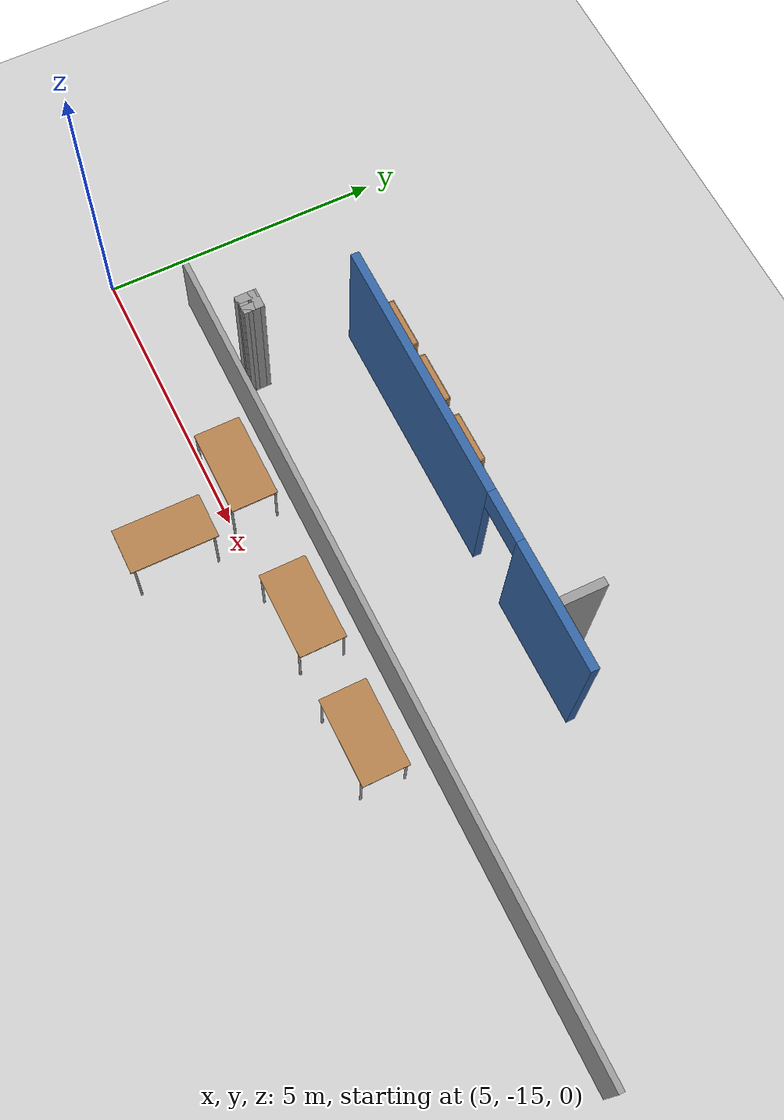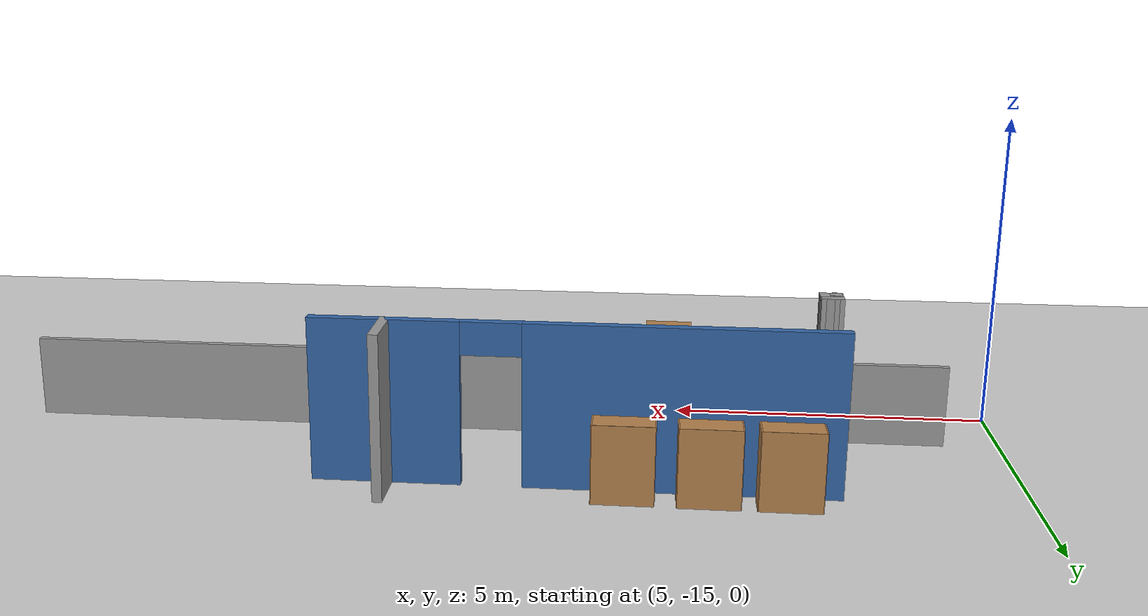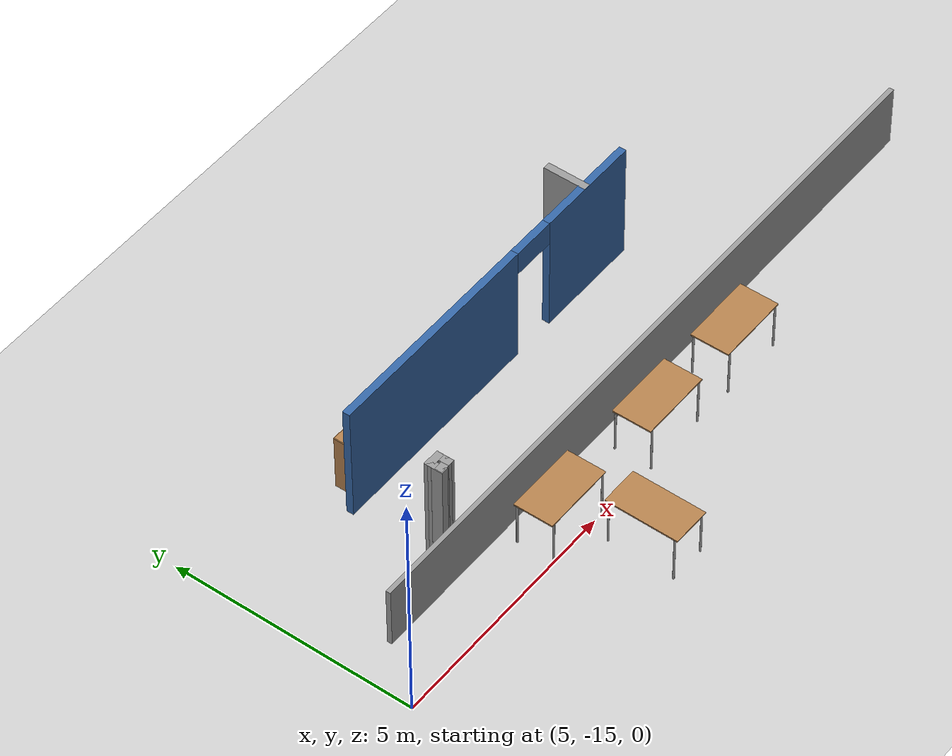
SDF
<sdf version="1.7">
 <world name="default">
  <model name="ground_plane">
   <static>1</static>
   <link name="link">
    <collision name="collision">
     <geometry><plane><normal>0 0 1</normal><size>100 100</size></plane></geometry>
     <surface>
      <contact><collide_bitmask>65535</collide_bitmask></contact>
      <friction><ode><mu>100</mu><mu2>50</mu2></ode></friction>
     </surface>
    </collision>
    <visual name="visual">
     <cast_shadows>0</cast_shadows>
     <geometry><plane><normal>0 0 1</normal><size>100 100</size></plane></geometry>
     <material>
      <script><uri>file://media/materials/scripts/gazebo.material</uri><name>Gazebo/Grey</name></script>
     </material>
    </visual>
   </link>
  </model>
  <model name="office_indoor_centered">
   <pose>8.45773 -9.64315 0 0 -0 0</pose>
   <link name="Wall_102">
    <collision name="Wall_102_Collision">
     <geometry><box><size>0.374413 0.15 2.5</size></box></geometry>
     <pose>0 0 1.25 0 -0 0</pose>
    </collision>
    <visual name="Wall_102_Visual">
     <pose>0 0 1.25 0 -0 0</pose>
     <geometry><box><size>0.374413 0.15 2.5</size></box></geometry>
     <material>
      <script><uri>file://media/materials/scripts/gazebo.material</uri><name>Gazebo/Grey</name></script>
      <ambient>1 1 1 1</ambient>
     </material>
     <meta><layer>0</layer></meta>
    </visual>
    <pose>-0.793469 -3.8239 0 0 -0 1.5708</pose>
   </link>
   <link name="Wall_103">
    <collision name="Wall_103_Collision">
     <geometry><box><size>0.348689 0.15 2.5</size></box></geometry>
     <pose>0 0 1.25 0 -0 0</pose>
    </collision>
    <visual name="Wall_103_Visual">
     <pose>0 0 1.25 0 -0 0</pose>
     <geometry><box><size>0.348689 0.15 2.5</size></box></geometry>
     <material>
      <script><uri>file://media/materials/scripts/gazebo.material</uri><name>Gazebo/Grey</name></script>
      <ambient>1 1 1 1</ambient>
     </material>
     <meta><layer>0</layer></meta>
    </visual>
    <pose>-0.694128 -3.71241 0 0 -0 -0.007194</pose>
   </link>
   <link name="Wall_104">
    <collision name="Wall_104_Collision">
     <geometry><box><size>0.355851 0.15 2.5</size></box></geometry>
     <pose>0 0 1.25 0 -0 0</pose>
    </collision>
    <visual name="Wall_104_Visual">
     <pose>0 0 1.25 0 -0 0</pose>
     <geometry><box><size>0.355851 0.15 2.5</size></box></geometry>
     <material>
      <script><uri>file://media/materials/scripts/gazebo.material</uri><name>Gazebo/Grey</name></script>
      <ambient>1 1 1 1</ambient>
     </material>
     <meta><layer>0</layer></meta>
    </visual>
    <pose>-0.593356 -3.81604 0 0 -0 -1.55691</pose>
   </link>
   <link name="Wall_105">
    <collision name="Wall_105_Collision">
     <geometry><box><size>0.337255 0.15 2.5</size></box></geometry>
     <pose>0 0 1.25 0 -0 0</pose>
    </collision>
    <visual name="Wall_105_Visual">
     <pose>0 0 1.25 0 -0 0</pose>
     <geometry><box><size>0.337255 0.15 2.5</size></box></geometry>
     <material>
      <script><uri>file://media/materials/scripts/gazebo.material</uri><name>Gazebo/Grey</name></script>
      <ambient>1 1 1 1</ambient>
     </material>
     <meta><layer>0</layer></meta>
    </visual>
    <pose>-0.685551 -3.91967 0 0 -0 -3.13396</pose>
   </link>
   <link name="Wall_146">
    <collision name="Wall_146_Collision">
     <geometry><box><size>14.7 0.1 1.3</size></box></geometry>
     <pose>0 0 0.65 0 -0 0</pose>
    </collision>
    <visual name="Wall_146_Visual">
     <pose>0 0 0.65 0 -0 0</pose>
     <geometry><box><size>14.7 0.1 1.3</size></box></geometry>
     <material>
      <script><uri>file://media/materials/scripts/gazebo.material</uri><name>Gazebo/Grey</name></script>
      <ambient>1 1 1 1</ambient>
     </material>
     <meta><layer>0</layer></meta>
    </visual>
    <pose>4.75027 -4.21685 0 0 -0 0</pose>
   </link>
   <link name="Wall_43">
    <pose>3.09646 -1.94491 0 0 -0 1.4e-05</pose>
    <visual name="Wall_43_Visual_0">
     <pose>-1.56374 0 1.25 0 -0 0</pose>
     <geometry><box><size>4.62252 0.15 2.5</size></box></geometry>
     <material>
      <script><uri>file://media/materials/scripts/gazebo.material</uri><name>Gazebo/Grey</name></script>
      <ambient>0.203922 0.396078 0.643137 1</ambient>
     </material>
     <meta><layer>0</layer></meta>
    </visual>
    <collision name="Wall_43_Collision_0">
     <geometry><box><size>4.62252 0.15 2.5</size></box></geometry>
     <pose>-1.56374 0 1.25 0 -0 0</pose>
    </collision>
    <visual name="Wall_43_Visual_1">
     <pose>2.76126 0 1.25 0 -0 0</pose>
     <geometry><box><size>2.22748 0.15 2.5</size></box></geometry>
     <material>
      <script><uri>file://media/materials/scripts/gazebo.material</uri><name>Gazebo/Grey</name></script>
      <ambient>0.203922 0.396078 0.643137 1</ambient>
     </material>
     <meta><layer>0</layer></meta>
    </visual>
    <collision name="Wall_43_Collision_1">
     <geometry><box><size>2.22748 0.15 2.5</size></box></geometry>
     <pose>2.76126 0 1.25 0 -0 0</pose>
    </collision>
    <visual name="Wall_43_Visual_2">
     <pose>1.19752 0 2.25 0 -0 0</pose>
     <geometry><box><size>0.9 0.15 0.5</size></box></geometry>
     <material>
      <script><uri>file://media/materials/scripts/gazebo.material</uri><name>Gazebo/Grey</name></script>
      <ambient>0.203922 0.396078 0.643137 1</ambient>
     </material>
     <meta><layer>0</layer></meta>
    </visual>
    <collision name="Wall_43_Collision_2">
     <geometry><box><size>0.9 0.15 0.5</size></box></geometry>
     <pose>1.19752 0 2.25 0 -0 0</pose>
    </collision>
   </link>
   <link name="Wall_54">
    <collision name="Wall_54_Collision">
     <geometry><box><size>0.890202 0.15 2.5</size></box></geometry>
     <pose>0 0 1.25 0 -0 0</pose>
    </collision>
    <visual name="Wall_54_Visual">
     <pose>0 0 1.25 0 -0 0</pose>
     <geometry><box><size>0.890202 0.15 2.5</size></box></geometry>
     <material>
      <script><uri>file://media/materials/scripts/gazebo.material</uri><name>Gazebo/Grey</name></script>
      <ambient>1 1 1 1</ambient>
     </material>
     <meta><layer>0</layer></meta>
    </visual>
    <pose>5.84246 -1.57254 0 0 -0 1.56298</pose>
   </link>
   <static>1</static>
  </model>
  <model name="table_7">
   <static>1</static>
   <link name="link">
    <collision name="surface">
     <pose>0 0 1 0 -0 0</pose>
     <geometry><box><size>1.5 0.8 0.03</size></box></geometry>
     <surface><friction><ode><mu>0.6</mu><mu2>0.6</mu2></ode></friction></surface>
    </collision>
    <visual name="visual1">
     <pose>0 0 1 0 -0 0</pose>
     <geometry><box><size>1.5 0.8 0.03</size></box></geometry>
     <material>
      <script><uri>file://media/materials/scripts/gazebo.material</uri><name>Gazebo/Wood</name></script>
     </material>
    </visual>
    <collision name="collision_front_left_leg">
     <pose>0.68 0.38 0.5 0 -0 0</pose>
     <geometry><cylinder><radius>0.02</radius><length>1</length></cylinder></geometry>
    </collision>
    <visual name="visual_front_left_leg">
     <pose>0.68 0.38 0.5 0 -0 0</pose>
     <geometry><cylinder><radius>0.02</radius><length>1</length></cylinder></geometry>
     <material>
      <script><uri>file://media/materials/scripts/gazebo.material</uri><name>Gazebo/Grey</name></script>
     </material>
    </visual>
    <collision name="collision_front_right_leg">
     <pose>0.68 -0.38 0.5 0 -0 0</pose>
     <geometry><cylinder><radius>0.02</radius><length>1</length></cylinder></geometry>
    </collision>
    <visual name="visual_front_right_leg">
     <pose>0.68 -0.38 0.5 0 -0 0</pose>
     <geometry><cylinder><radius>0.02</radius><length>1</length></cylinder></geometry>
     <material>
      <script><uri>file://media/materials/scripts/gazebo.material</uri><name>Gazebo/Grey</name></script>
     </material>
    </visual>
    <collision name="collision_back_right_leg">
     <pose>-0.68 -0.38 0.5 0 -0 0</pose>
     <geometry><cylinder><radius>0.02</radius><length>1</length></cylinder></geometry>
    </collision>
    <visual name="visual_back_right_leg">
     <pose>-0.68 -0.38 0.5 0 -0 0</pose>
     <geometry><cylinder><radius>0.02</radius><length>1</length></cylinder></geometry>
     <material>
      <script><uri>file://media/materials/scripts/gazebo.material</uri><name>Gazebo/Grey</name></script>
     </material>
    </visual>
    <collision name="collision_back_left_leg">
     <pose>-0.68 0.38 0.5 0 -0 0</pose>
     <geometry><cylinder><radius>0.02</radius><length>1</length></cylinder></geometry>
    </collision>
    <visual name="visual_back_left_leg">
     <pose>-0.68 0.38 0.5 0 -0 0</pose>
     <geometry><cylinder><radius>0.02</radius><length>1</length></cylinder></geometry>
     <material>
      <script><uri>file://media/materials/scripts/gazebo.material</uri><name>Gazebo/Grey</name></script>
     </material>
    </visual>
   </link>
   <pose>9.53853 -14.6102 0 0 -0 0</pose>
  </model>
  <model name="table_8">
   <static>1</static>
   <link name="link">
    <collision name="surface">
     <pose>0 0 1 0 -0 0</pose>
     <geometry><box><size>1.5 0.8 0.03</size></box></geometry>
     <surface><friction><ode><mu>0.6</mu><mu2>0.6</mu2></ode></friction></surface>
    </collision>
    <visual name="visual1">
     <pose>0 0 1 0 -0 0</pose>
     <geometry><box><size>1.5 0.8 0.03</size></box></geometry>
     <material>
      <script><uri>file://media/materials/scripts/gazebo.material</uri><name>Gazebo/Wood</name></script>
     </material>
    </visual>
    <collision name="collision_front_left_leg">
     <pose>0.68 0.38 0.5 0 -0 0</pose>
     <geometry><cylinder><radius>0.02</radius><length>1</length></cylinder></geometry>
    </collision>
    <visual name="visual_front_left_leg">
     <pose>0.68 0.38 0.5 0 -0 0</pose>
     <geometry><cylinder><radius>0.02</radius><length>1</length></cylinder></geometry>
     <material>
      <script><uri>file://media/materials/scripts/gazebo.material</uri><name>Gazebo/Grey</name></script>
     </material>
    </visual>
    <collision name="collision_front_right_leg">
     <pose>0.68 -0.38 0.5 0 -0 0</pose>
     <geometry><cylinder><radius>0.02</radius><length>1</length></cylinder></geometry>
    </collision>
    <visual name="visual_front_right_leg">
     <pose>0.68 -0.38 0.5 0 -0 0</pose>
     <geometry><cylinder><radius>0.02</radius><length>1</length></cylinder></geometry>
     <material>
      <script><uri>file://media/materials/scripts/gazebo.material</uri><name>Gazebo/Grey</name></script>
     </material>
    </visual>
    <collision name="collision_back_right_leg">
     <pose>-0.68 -0.38 0.5 0 -0 0</pose>
     <geometry><cylinder><radius>0.02</radius><length>1</length></cylinder></geometry>
    </collision>
    <visual name="visual_back_right_leg">
     <pose>-0.68 -0.38 0.5 0 -0 0</pose>
     <geometry><cylinder><radius>0.02</radius><length>1</length></cylinder></geometry>
     <material>
      <script><uri>file://media/materials/scripts/gazebo.material</uri><name>Gazebo/Grey</name></script>
     </material>
    </visual>
    <collision name="collision_back_left_leg">
     <pose>-0.68 0.38 0.5 0 -0 0</pose>
     <geometry><cylinder><radius>0.02</radius><length>1</length></cylinder></geometry>
    </collision>
    <visual name="visual_back_left_leg">
     <pose>-0.68 0.38 0.5 0 -0 0</pose>
     <geometry><cylinder><radius>0.02</radius><length>1</length></cylinder></geometry>
     <material>
      <script><uri>file://media/materials/scripts/gazebo.material</uri><name>Gazebo/Grey</name></script>
     </material>
    </visual>
   </link>
   <pose>12.2109 -14.6879 0 0 -0 0</pose>
  </model>
  <model name="table_9">
   <static>1</static>
   <link name="link">
    <collision name="surface">
     <pose>0 0 1 0 -0 0</pose>
     <geometry><box><size>1.5 0.8 0.03</size></box></geometry>
     <surface><friction><ode><mu>0.6</mu><mu2>0.6</mu2></ode></friction></surface>
    </collision>
    <visual name="visual1">
     <pose>0 0 1 0 -0 0</pose>
     <geometry><box><size>1.5 0.8 0.03</size></box></geometry>
     <material>
      <script><uri>file://media/materials/scripts/gazebo.material</uri><name>Gazebo/Wood</name></script>
     </material>
    </visual>
    <collision name="collision_front_left_leg">
     <pose>0.68 0.38 0.5 0 -0 0</pose>
     <geometry><cylinder><radius>0.02</radius><length>1</length></cylinder></geometry>
    </collision>
    <visual name="visual_front_left_leg">
     <pose>0.68 0.38 0.5 0 -0 0</pose>
     <geometry><cylinder><radius>0.02</radius><length>1</length></cylinder></geometry>
     <material>
      <script><uri>file://media/materials/scripts/gazebo.material</uri><name>Gazebo/Grey</name></script>
     </material>
    </visual>
    <collision name="collision_front_right_leg">
     <pose>0.68 -0.38 0.5 0 -0 0</pose>
     <geometry><cylinder><radius>0.02</radius><length>1</length></cylinder></geometry>
    </collision>
    <visual name="visual_front_right_leg">
     <pose>0.68 -0.38 0.5 0 -0 0</pose>
     <geometry><cylinder><radius>0.02</radius><length>1</length></cylinder></geometry>
     <material>
      <script><uri>file://media/materials/scripts/gazebo.material</uri><name>Gazebo/Grey</name></script>
     </material>
    </visual>
    <collision name="collision_back_right_leg">
     <pose>-0.68 -0.38 0.5 0 -0 0</pose>
     <geometry><cylinder><radius>0.02</radius><length>1</length></cylinder></geometry>
    </collision>
    <visual name="visual_back_right_leg">
     <pose>-0.68 -0.38 0.5 0 -0 0</pose>
     <geometry><cylinder><radius>0.02</radius><length>1</length></cylinder></geometry>
     <material>
      <script><uri>file://media/materials/scripts/gazebo.material</uri><name>Gazebo/Grey</name></script>
     </material>
    </visual>
    <collision name="collision_back_left_leg">
     <pose>-0.68 0.38 0.5 0 -0 0</pose>
     <geometry><cylinder><radius>0.02</radius><length>1</length></cylinder></geometry>
    </collision>
    <visual name="visual_back_left_leg">
     <pose>-0.68 0.38 0.5 0 -0 0</pose>
     <geometry><cylinder><radius>0.02</radius><length>1</length></cylinder></geometry>
     <material>
      <script><uri>file://media/materials/scripts/gazebo.material</uri><name>Gazebo/Grey</name></script>
     </material>
    </visual>
   </link>
   <pose>14.4395 -14.7208 0 0 -0 0</pose>
  </model>
  <model name="table_26_clone_15">
   <static>1</static>
   <link name="link">
    <collision name="surface">
     <pose>0 0 1 0 -0 0</pose>
     <geometry><box><size>1.5 0.8 0.03</size></box></geometry>
     <surface><friction><ode><mu>0.6</mu><mu2>0.6</mu2></ode></friction></surface>
    </collision>
    <visual name="visual1">
     <pose>0 0 1 0 -0 0</pose>
     <geometry><box><size>1.5 0.8 0.03</size></box></geometry>
     <material>
      <script><uri>file://media/materials/scripts/gazebo.material</uri><name>Gazebo/Wood</name></script>
     </material>
    </visual>
    <collision name="collision_front_left_leg">
     <pose>0.68 0.38 0.5 0 -0 0</pose>
     <geometry><cylinder><radius>0.02</radius><length>1</length></cylinder></geometry>
    </collision>
    <visual name="visual_front_left_leg">
     <pose>0.68 0.38 0.5 0 -0 0</pose>
     <geometry><cylinder><radius>0.02</radius><length>1</length></cylinder></geometry>
     <material>
      <script><uri>file://media/materials/scripts/gazebo.material</uri><name>Gazebo/Grey</name></script>
     </material>
    </visual>
    <collision name="collision_front_right_leg">
     <pose>0.68 -0.38 0.5 0 -0 0</pose>
     <geometry><cylinder><radius>0.02</radius><length>1</length></cylinder></geometry>
    </collision>
    <visual name="visual_front_right_leg">
     <pose>0.68 -0.38 0.5 0 -0 0</pose>
     <geometry><cylinder><radius>0.02</radius><length>1</length></cylinder></geometry>
     <material>
      <script><uri>file://media/materials/scripts/gazebo.material</uri><name>Gazebo/Grey</name></script>
     </material>
    </visual>
    <collision name="collision_back_right_leg">
     <pose>-0.68 -0.38 0.5 0 -0 0</pose>
     <geometry><cylinder><radius>0.02</radius><length>1</length></cylinder></geometry>
    </collision>
    <visual name="visual_back_right_leg">
     <pose>-0.68 -0.38 0.5 0 -0 0</pose>
     <geometry><cylinder><radius>0.02</radius><length>1</length></cylinder></geometry>
     <material>
      <script><uri>file://media/materials/scripts/gazebo.material</uri><name>Gazebo/Grey</name></script>
     </material>
    </visual>
    <collision name="collision_back_left_leg">
     <pose>-0.68 0.38 0.5 0 -0 0</pose>
     <geometry><cylinder><radius>0.02</radius><length>1</length></cylinder></geometry>
    </collision>
    <visual name="visual_back_left_leg">
     <pose>-0.68 0.38 0.5 0 -0 0</pose>
     <geometry><cylinder><radius>0.02</radius><length>1</length></cylinder></geometry>
     <material>
      <script><uri>file://media/materials/scripts/gazebo.material</uri><name>Gazebo/Grey</name></script>
     </material>
    </visual>
   </link>
   <pose>10.166 -16.1139 0 0 0 -1.57974</pose>
  </model>
  <model name="bookshelf_6">
   <static>1</static>
   <link name="link">
    <inertial><mass>1</mass></inertial>
    <collision name="collision_back">
     <pose>0 0.005 0.6 0 -0 0</pose>
     <geometry><box><size>0.9 0.01 1.2</size></box></geometry>
    </collision>
    <visual name="visual1">
     <pose>0 0.005 0.6 0 -0 0</pose>
     <geometry><box><size>0.9 0.01 1.2</size></box></geometry>
     <material>
      <script><uri>file://media/materials/scripts/gazebo.material</uri><name>Gazebo/Wood</name></script>
     </material>
    </visual>
    <collision name="left_side">
     <pose>0.45 -0.195 0.6 0 -0 0</pose>
     <geometry><box><size>0.02 0.4 1.2</size></box></geometry>
    </collision>
    <visual name="visual2">
     <pose>0.45 -0.195 0.6 0 -0 0</pose>
     <geometry><box><size>0.02 0.4 1.2</size></box></geometry>
     <material>
      <script><uri>file://media/materials/scripts/gazebo.material</uri><name>Gazebo/Wood</name></script>
     </material>
    </visual>
    <collision name="right_side">
     <pose>-0.45 -0.195 0.6 0 -0 0</pose>
     <geometry><box><size>0.02 0.4 1.2</size></box></geometry>
    </collision>
    <visual name="visual3">
     <pose>-0.45 -0.195 0.6 0 -0 0</pose>
     <geometry><box><size>0.02 0.4 1.2</size></box></geometry>
     <material>
      <script><uri>file://media/materials/scripts/gazebo.material</uri><name>Gazebo/Wood</name></script>
     </material>
    </visual>
    <collision name="bottom">
     <pose>0 -0.195 0.03 0 -0 0</pose>
     <geometry><box><size>0.88 0.4 0.06</size></box></geometry>
    </collision>
    <visual name="visual4">
     <pose>0 -0.195 0.03 0 -0 0</pose>
     <geometry><box><size>0.88 0.4 0.06</size></box></geometry>
     <material>
      <script><uri>file://media/materials/scripts/gazebo.material</uri><name>Gazebo/Wood</name></script>
     </material>
    </visual>
    <collision name="top">
     <pose>0 -0.195 1.19 0 -0 0</pose>
     <geometry><box><size>0.88 0.4 0.02</size></box></geometry>
    </collision>
    <visual name="visual5">
     <pose>0 -0.195 1.19 0 -0 0</pose>
     <geometry><box><size>0.88 0.4 0.02</size></box></geometry>
     <material>
      <script><uri>file://media/materials/scripts/gazebo.material</uri><name>Gazebo/Wood</name></script>
     </material>
    </visual>
    <collision name="low_shelf">
     <pose>0 -0.195 0.43 0 -0 0</pose>
     <geometry><box><size>0.88 0.4 0.02</size></box></geometry>
    </collision>
    <visual name="visual6">
     <pose>0 -0.195 0.43 0 -0 0</pose>
     <geometry><box><size>0.88 0.4 0.02</size></box></geometry>
     <material>
      <script><uri>file://media/materials/scripts/gazebo.material</uri><name>Gazebo/Wood</name></script>
     </material>
    </visual>
    <collision name="high_shelf">
     <pose>0 -0.195 0.8 0 -0 0</pose>
     <geometry><box><size>0.88 0.4 0.02</size></box></geometry>
    </collision>
    <visual name="visual7">
     <pose>0 -0.195 0.8 0 -0 0</pose>
     <geometry><box><size>0.88 0.4 0.02</size></box></geometry>
     <material>
      <script><uri>file://media/materials/scripts/gazebo.material</uri><name>Gazebo/Wood</name></script>
     </material>
    </visual>
   </link>
   <pose>8.4685 -11.0198 0 0 -0 0</pose>
  </model>
  <model name="bookshelf_7">
   <static>1</static>
   <link name="link">
    <inertial><mass>1</mass></inertial>
    <collision name="collision_back">
     <pose>0 0.005 0.6 0 -0 0</pose>
     <geometry><box><size>0.9 0.01 1.2</size></box></geometry>
    </collision>
    <visual name="visual1">
     <pose>0 0.005 0.6 0 -0 0</pose>
     <geometry><box><size>0.9 0.01 1.2</size></box></geometry>
     <material>
      <script><uri>file://media/materials/scripts/gazebo.material</uri><name>Gazebo/Wood</name></script>
     </material>
    </visual>
    <collision name="left_side">
     <pose>0.45 -0.195 0.6 0 -0 0</pose>
     <geometry><box><size>0.02 0.4 1.2</size></box></geometry>
    </collision>
    <visual name="visual2">
     <pose>0.45 -0.195 0.6 0 -0 0</pose>
     <geometry><box><size>0.02 0.4 1.2</size></box></geometry>
     <material>
      <script><uri>file://media/materials/scripts/gazebo.material</uri><name>Gazebo/Wood</name></script>
     </material>
    </visual>
    <collision name="right_side">
     <pose>-0.45 -0.195 0.6 0 -0 0</pose>
     <geometry><box><size>0.02 0.4 1.2</size></box></geometry>
    </collision>
    <visual name="visual3">
     <pose>-0.45 -0.195 0.6 0 -0 0</pose>
     <geometry><box><size>0.02 0.4 1.2</size></box></geometry>
     <material>
      <script><uri>file://media/materials/scripts/gazebo.material</uri><name>Gazebo/Wood</name></script>
     </material>
    </visual>
    <collision name="bottom">
     <pose>0 -0.195 0.03 0 -0 0</pose>
     <geometry><box><size>0.88 0.4 0.06</size></box></geometry>
    </collision>
    <visual name="visual4">
     <pose>0 -0.195 0.03 0 -0 0</pose>
     <geometry><box><size>0.88 0.4 0.06</size></box></geometry>
     <material>
      <script><uri>file://media/materials/scripts/gazebo.material</uri><name>Gazebo/Wood</name></script>
     </material>
    </visual>
    <collision name="top">
     <pose>0 -0.195 1.19 0 -0 0</pose>
     <geometry><box><size>0.88 0.4 0.02</size></box></geometry>
    </collision>
    <visual name="visual5">
     <pose>0 -0.195 1.19 0 -0 0</pose>
     <geometry><box><size>0.88 0.4 0.02</size></box></geometry>
     <material>
      <script><uri>file://media/materials/scripts/gazebo.material</uri><name>Gazebo/Wood</name></script>
     </material>
    </visual>
    <collision name="low_shelf">
     <pose>0 -0.195 0.43 0 -0 0</pose>
     <geometry><box><size>0.88 0.4 0.02</size></box></geometry>
    </collision>
    <visual name="visual6">
     <pose>0 -0.195 0.43 0 -0 0</pose>
     <geometry><box><size>0.88 0.4 0.02</size></box></geometry>
     <material>
      <script><uri>file://media/materials/scripts/gazebo.material</uri><name>Gazebo/Wood</name></script>
     </material>
    </visual>
    <collision name="high_shelf">
     <pose>0 -0.195 0.8 0 -0 0</pose>
     <geometry><box><size>0.88 0.4 0.02</size></box></geometry>
    </collision>
    <visual name="visual7">
     <pose>0 -0.195 0.8 0 -0 0</pose>
     <geometry><box><size>0.88 0.4 0.02</size></box></geometry>
     <material>
      <script><uri>file://media/materials/scripts/gazebo.material</uri><name>Gazebo/Wood</name></script>
     </material>
    </visual>
   </link>
   <pose>9.60867 -11.0169 0 0 -0 0</pose>
  </model>
  <model name="bookshelf_8">
   <static>1</static>
   <link name="link">
    <inertial><mass>1</mass></inertial>
    <collision name="collision_back">
     <pose>0 0.005 0.6 0 -0 0</pose>
     <geometry><box><size>0.9 0.01 1.2</size></box></geometry>
    </collision>
    <visual name="visual1">
     <pose>0 0.005 0.6 0 -0 0</pose>
     <geometry><box><size>0.9 0.01 1.2</size></box></geometry>
     <material>
      <script><uri>file://media/materials/scripts/gazebo.material</uri><name>Gazebo/Wood</name></script>
     </material>
    </visual>
    <collision name="left_side">
     <pose>0.45 -0.195 0.6 0 -0 0</pose>
     <geometry><box><size>0.02 0.4 1.2</size></box></geometry>
    </collision>
    <visual name="visual2">
     <pose>0.45 -0.195 0.6 0 -0 0</pose>
     <geometry><box><size>0.02 0.4 1.2</size></box></geometry>
     <material>
      <script><uri>file://media/materials/scripts/gazebo.material</uri><name>Gazebo/Wood</name></script>
     </material>
    </visual>
    <collision name="right_side">
     <pose>-0.45 -0.195 0.6 0 -0 0</pose>
     <geometry><box><size>0.02 0.4 1.2</size></box></geometry>
    </collision>
    <visual name="visual3">
     <pose>-0.45 -0.195 0.6 0 -0 0</pose>
     <geometry><box><size>0.02 0.4 1.2</size></box></geometry>
     <material>
      <script><uri>file://media/materials/scripts/gazebo.material</uri><name>Gazebo/Wood</name></script>
     </material>
    </visual>
    <collision name="bottom">
     <pose>0 -0.195 0.03 0 -0 0</pose>
     <geometry><box><size>0.88 0.4 0.06</size></box></geometry>
    </collision>
    <visual name="visual4">
     <pose>0 -0.195 0.03 0 -0 0</pose>
     <geometry><box><size>0.88 0.4 0.06</size></box></geometry>
     <material>
      <script><uri>file://media/materials/scripts/gazebo.material</uri><name>Gazebo/Wood</name></script>
     </material>
    </visual>
    <collision name="top">
     <pose>0 -0.195 1.19 0 -0 0</pose>
     <geometry><box><size>0.88 0.4 0.02</size></box></geometry>
    </collision>
    <visual name="visual5">
     <pose>0 -0.195 1.19 0 -0 0</pose>
     <geometry><box><size>0.88 0.4 0.02</size></box></geometry>
     <material>
      <script><uri>file://media/materials/scripts/gazebo.material</uri><name>Gazebo/Wood</name></script>
     </material>
    </visual>
    <collision name="low_shelf">
     <pose>0 -0.195 0.43 0 -0 0</pose>
     <geometry><box><size>0.88 0.4 0.02</size></box></geometry>
    </collision>
    <visual name="visual6">
     <pose>0 -0.195 0.43 0 -0 0</pose>
     <geometry><box><size>0.88 0.4 0.02</size></box></geometry>
     <material>
      <script><uri>file://media/materials/scripts/gazebo.material</uri><name>Gazebo/Wood</name></script>
     </material>
    </visual>
    <collision name="high_shelf">
     <pose>0 -0.195 0.8 0 -0 0</pose>
     <geometry><box><size>0.88 0.4 0.02</size></box></geometry>
    </collision>
    <visual name="visual7">
     <pose>0 -0.195 0.8 0 -0 0</pose>
     <geometry><box><size>0.88 0.4 0.02</size></box></geometry>
     <material>
      <script><uri>file://media/materials/scripts/gazebo.material</uri><name>Gazebo/Wood</name></script>
     </material>
    </visual>
   </link>
   <pose>10.8289 -11.026 0 0 -0 0</pose>
  </model>
 </world>
</sdf>
